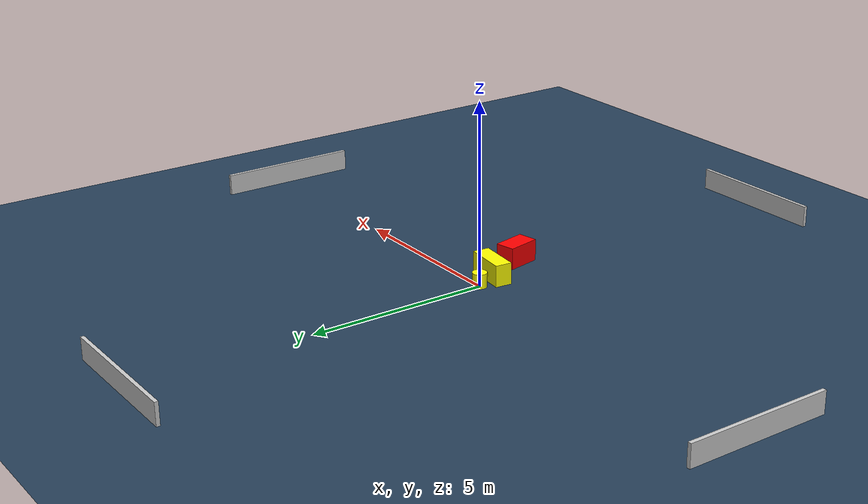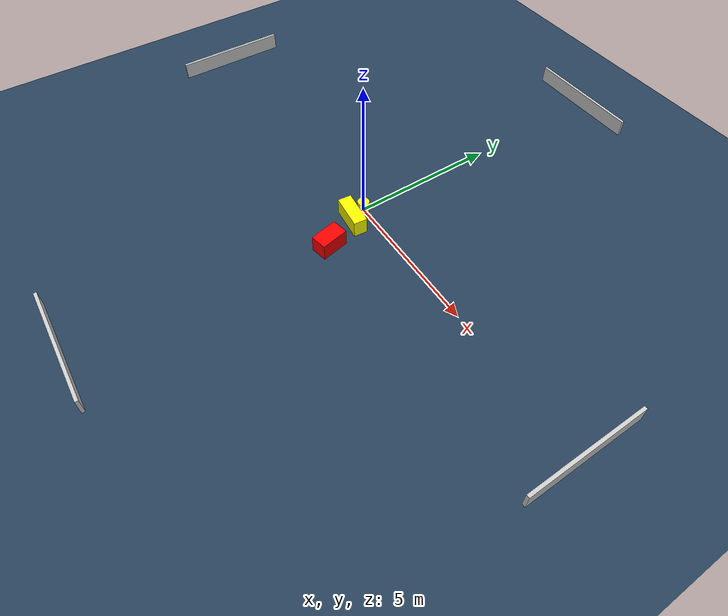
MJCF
<?xml version="1.0" ?>
<mujoco model="generated_environment">
  <option timestep="0.01" integrator="RK4" cone="elliptic"/>
  <default>
    <geom density="1"/>
  </default>
  <asset>
    <texture builtin="gradient" height="3072" name="skybox" rgb1="0.3 0.5 0.7" rgb2="0 0 0" type="skybox" width="512"/>
    <texture builtin="checker" height="300" name="groundplane" rgb1="0.2 0.3 0.4" rgb2="0.1 0.2 0.3" type="2d" width="300"/>
    <material name="groundplane" reflectance="0.2" texrepeat="5 5" texture="groundplane"/>
  </asset>
  <worldbody>
    <light dir="0 0 -1" directional="true" pos="0 0 1.5"/>
    <geom condim="3" friction="0.5 0.005 0.001" material="groundplane" name="floor" pos="0 0 0" size="0 0 0.05" type="plane"/>
    <body name="walls">
      <geom name="wall_1" condim="4" pos="-10.0 0.0 0.3" rgba="0.800000011920929 0.800000011920929 0.800000011920929 1.0" size="0.05 2.0 0.3" type="box"/>
      <geom name="wall_2" condim="4" pos="10.0 0.0 0.3" rgba="0.800000011920929 0.800000011920929 0.800000011920929 1.0" size="0.05 2.0 0.3" type="box"/>
      <geom name="wall_3" condim="4" pos="0.0 -10.0 0.3" rgba="0.800000011920929 0.800000011920929 0.800000011920929 1.0" size="2.0 0.05 0.3" type="box"/>
      <geom name="wall_4" condim="4" pos="0.0 10.0 0.3" rgba="0.800000011920929 0.800000011920929 0.800000011920929 1.0" size="2.0 0.05 0.3" type="box"/>
    </body>
    <body name="robot">
      <joint name="joint_x" type="slide" pos="0 0 0" axis="1 0 0"/>
      <joint name="joint_y" type="slide" pos="0 0 0" axis="0 1 0"/>
      <geom name="robot" type="cylinder" pos="0.0 0.0 0.2" size="0.2 0.2 0.0" mass="5.0" friction="1.0 0.005 0.0001" condim="4" rgba="1.0 1.0 0.0 1.0"/>
    </body>
    <body name="obstacle_1_movable">
      <geom name="obstacle_1_movable" condim="4" pos="0.2520017931428907 -0.5898587853196172 0.3" euler="0 0 174.19881303422002" friction="0.0 0.005 0.001" rgba="1.0 1.0 0.0 1.0" size="0.5865681159293756 0.22996999794334605 0.3" type="box" mass="0.1"/>
      <joint type="free"/>
    </body>
    <body name="obstacle_2_static">
      <geom name="obstacle_2_static" condim="4" pos="0.7375957978869825 -1.7536595273056315 0.3" euler="0 0 281.58310767247406" friction="0.0 0.005 0.001" rgba="1.0 0.0 0.0 1.0" size="0.4677825008531245 0.27670089723543545 0.3" type="box"/>
    </body>
  </worldbody>
  <actuator>
    <motor name="actuator_x" joint="joint_x" gear="1" ctrlrange="-1 1"/>
    <motor name="actuator_y" joint="joint_y" gear="1" ctrlrange="-1 1"/>
  </actuator>
</mujoco>
